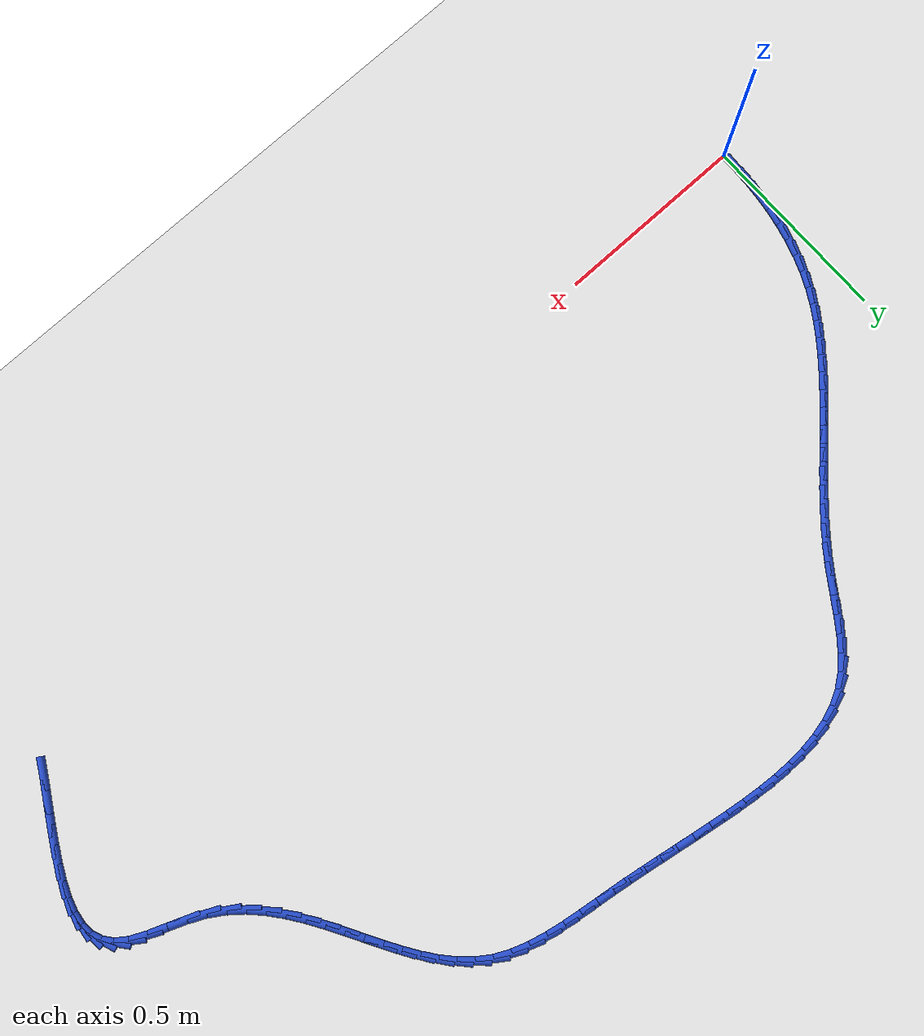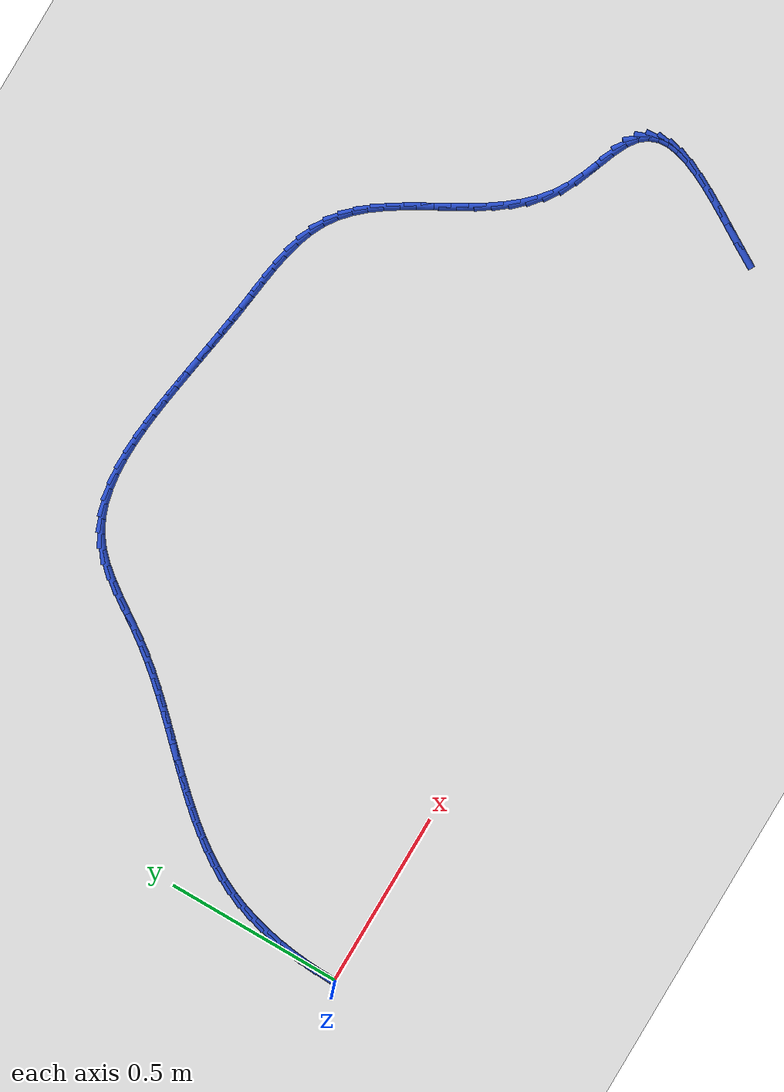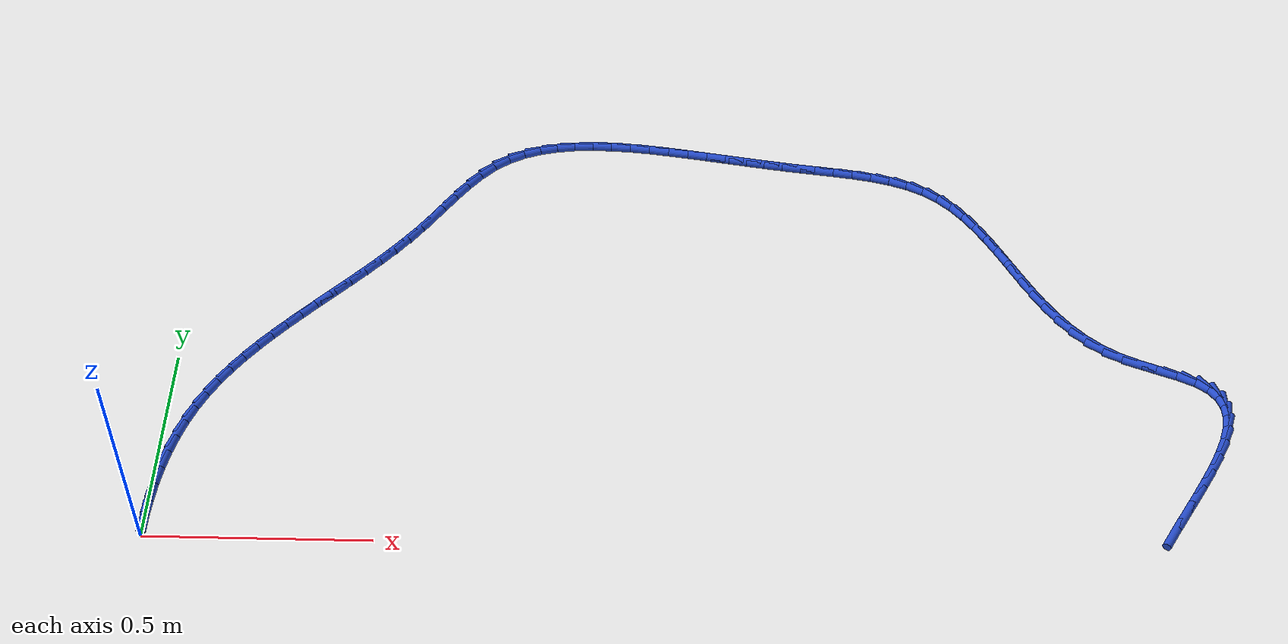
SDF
<sdf version="1.6">
 <world name="default">
  <model name="ground_plane">
   <static>1</static>
   <link name="link">
    <collision name="collision">
     <geometry><plane><normal>0 0 1</normal><size>100 100</size></plane></geometry>
     <surface><friction><ode><mu>100</mu><mu2>50</mu2></ode></friction></surface>
    </collision>
    <visual name="visual">
     <cast_shadows>0</cast_shadows>
     <geometry><plane><normal>0 0 1</normal><size>100 100</size></plane></geometry>
     <material>
      <script><uri>file://media/materials/scripts/gazebo.material</uri><name>Gazebo/WhiteGlow</name></script>
     </material>
    </visual>
   </link>
  </model>
  <model name="line">
   <link name="link_1">
    <pose>0.0004927395699502331 0.04562543467197222 0.01 0 1.57 1.518257264437585</pose>
    <collision name="collision">
     <geometry><cylinder><radius>0.01</radius><length>0.08</length></cylinder></geometry>
    </collision>
    <visual name="visual">
     <material>
      <script><name>Gazebo/Blue</name><uri>file://media/materials/scripts/gazebo.material</uri></script>
     </material>
     <geometry><cylinder><radius>0.01</radius><length>0.08</length></cylinder></geometry>
    </visual>
   </link>
   <link name="link_2">
    <pose>0.0028899708029637514 0.09121104249732984 0.01 0 1.57 1.4738781874758704</pose>
    <collision name="collision">
     <geometry><cylinder><radius>0.01</radius><length>0.08</length></cylinder></geometry>
    </collision>
    <visual name="visual">
     <material>
      <script><name>Gazebo/Blue</name><uri>file://media/materials/scripts/gazebo.material</uri></script>
     </material>
     <geometry><cylinder><radius>0.01</radius><length>0.08</length></cylinder></geometry>
    </visual>
   </link>
   <link name="link_3">
    <pose>0.00729627914929314 0.13653283049259837 0.01 0 1.57 1.4263838987702546</pose>
    <collision name="collision">
     <geometry><cylinder><radius>0.01</radius><length>0.08</length></cylinder></geometry>
    </collision>
    <visual name="visual">
     <material>
      <script><name>Gazebo/Blue</name><uri>file://media/materials/scripts/gazebo.material</uri></script>
     </material>
     <geometry><cylinder><radius>0.01</radius><length>0.08</length></cylinder></geometry>
    </visual>
   </link>
   <link name="link_4">
    <pose>0.013816250059190946 0.18136680567430352 0.01 0 1.57 1.3752803222719931</pose>
    <collision name="collision">
     <geometry><cylinder><radius>0.01</radius><length>0.08</length></cylinder></geometry>
    </collision>
    <visual name="visual">
     <material>
      <script><name>Gazebo/Blue</name><uri>file://media/materials/scripts/gazebo.material</uri></script>
     </material>
     <geometry><cylinder><radius>0.01</radius><length>0.08</length></cylinder></geometry>
    </visual>
   </link>
   <link name="link_5">
    <pose>0.02255446898290972 0.22548897505897092 0.01 0 1.57 1.320062551266252</pose>
    <collision name="collision">
     <geometry><cylinder><radius>0.01</radius><length>0.08</length></cylinder></geometry>
    </collision>
    <visual name="visual">
     <material>
      <script><name>Gazebo/Blue</name><uri>file://media/materials/scripts/gazebo.material</uri></script>
     </material>
     <geometry><cylinder><radius>0.01</radius><length>0.08</length></cylinder></geometry>
    </visual>
   </link>
   <link name="link_6">
    <pose>0.03361552137070199 0.26867534566312606 0.01 0 1.57 1.2602309832166376</pose>
    <collision name="collision">
     <geometry><cylinder><radius>0.01</radius><length>0.08</length></cylinder></geometry>
    </collision>
    <visual name="visual">
     <material>
      <script><name>Gazebo/Blue</name><uri>file://media/materials/scripts/gazebo.material</uri></script>
     </material>
     <geometry><cylinder><radius>0.01</radius><length>0.08</length></cylinder></geometry>
    </visual>
   </link>
   <link name="link_7">
    <pose>0.04710399267282034 0.31070192450329465 0.01 0 1.57 1.1953193869684806</pose>
    <collision name="collision">
     <geometry><cylinder><radius>0.01</radius><length>0.08</length></cylinder></geometry>
    </collision>
    <visual name="visual">
     <material>
      <script><name>Gazebo/Blue</name><uri>file://media/materials/scripts/gazebo.material</uri></script>
     </material>
     <geometry><cylinder><radius>0.01</radius><length>0.08</length></cylinder></geometry>
    </visual>
   </link>
   <link name="link_8">
    <pose>0.06312446833951726 0.35134471859600236 0.01 0 1.57 1.1257652403895446</pose>
    <collision name="collision">
     <geometry><cylinder><radius>0.01</radius><length>0.08</length></cylinder></geometry>
    </collision>
    <visual name="visual">
     <material>
      <script><name>Gazebo/Blue</name><uri>file://media/materials/scripts/gazebo.material</uri></script>
     </material>
     <geometry><cylinder><radius>0.01</radius><length>0.08</length></cylinder></geometry>
    </visual>
   </link>
   <link name="link_9">
    <pose>0.0817559265369225 0.3904091851299864 0.01 0 1.57 1.058842065183489</pose>
    <collision name="collision">
     <geometry><cylinder><radius>0.01</radius><length>0.08</length></cylinder></geometry>
    </collision>
    <visual name="visual">
     <material>
      <script><name>Gazebo/Blue</name><uri>file://media/materials/scripts/gazebo.material</uri></script>
     </material>
     <geometry><cylinder><radius>0.01</radius><length>0.08</length></cylinder></geometry>
    </visual>
   </link>
   <link name="link_10">
    <pose>0.10285486777474098 0.42795664619803014 0.01 0 1.57 0.9990269123278682</pose>
    <collision name="collision">
     <geometry><cylinder><radius>0.01</radius><length>0.08</length></cylinder></geometry>
    </collision>
    <visual name="visual">
     <material>
      <script><name>Gazebo/Blue</name><uri>file://media/materials/scripts/gazebo.material</uri></script>
     </material>
     <geometry><cylinder><radius>0.01</radius><length>0.08</length></cylinder></geometry>
    </visual>
   </link>
   <link name="link_11">
    <pose>0.12616340980485868 0.46417997208442524 0.01 0 1.57 0.9469185855319321</pose>
    <collision name="collision">
     <geometry><cylinder><radius>0.01</radius><length>0.08</length></cylinder></geometry>
    </collision>
    <visual name="visual">
     <material>
      <script><name>Gazebo/Blue</name><uri>file://media/materials/scripts/gazebo.material</uri></script>
     </material>
     <geometry><cylinder><radius>0.01</radius><length>0.08</length></cylinder></geometry>
    </visual>
   </link>
   <link name="link_12">
    <pose>0.15142273011574314 0.4992731144423229 0.01 0 1.57 0.9027721931222819</pose>
    <collision name="collision">
     <geometry><cylinder><radius>0.01</radius><length>0.08</length></cylinder></geometry>
    </collision>
    <visual name="visual">
     <material>
      <script><name>Gazebo/Blue</name><uri>file://media/materials/scripts/gazebo.material</uri></script>
     </material>
     <geometry><cylinder><radius>0.01</radius><length>0.08</length></cylinder></geometry>
    </visual>
   </link>
   <link name="link_13">
    <pose>0.17837400619586158 0.5334300249248736 0.01 0 1.57 0.8666155394232734</pose>
    <collision name="collision">
     <geometry><cylinder><radius>0.01</radius><length>0.08</length></cylinder></geometry>
    </collision>
    <visual name="visual">
     <material>
      <script><name>Gazebo/Blue</name><uri>file://media/materials/scripts/gazebo.material</uri></script>
     </material>
     <geometry><cylinder><radius>0.01</radius><length>0.08</length></cylinder></geometry>
    </visual>
   </link>
   <link name="link_14">
    <pose>0.20675841553368132 0.5668446551852275 0.01 0 1.57 0.8383335326738679</pose>
    <collision name="collision">
     <geometry><cylinder><radius>0.01</radius><length>0.08</length></cylinder></geometry>
    </collision>
    <visual name="visual">
     <material>
      <script><name>Gazebo/Blue</name><uri>file://media/materials/scripts/gazebo.material</uri></script>
     </material>
     <geometry><cylinder><radius>0.01</radius><length>0.08</length></cylinder></geometry>
    </visual>
   </link>
   <link name="link_15">
    <pose>0.23631713561766995 0.5997109568765362 0.01 0 1.57 0.8177387101790301</pose>
    <collision name="collision">
     <geometry><cylinder><radius>0.01</radius><length>0.08</length></cylinder></geometry>
    </collision>
    <visual name="visual">
     <material>
      <script><name>Gazebo/Blue</name><uri>file://media/materials/scripts/gazebo.material</uri></script>
     </material>
     <geometry><cylinder><radius>0.01</radius><length>0.08</length></cylinder></geometry>
    </visual>
   </link>
   <link name="link_16">
    <pose>0.26679134393629467 0.6322228816519498 0.01 0 1.57 0.8046235800142252</pose>
    <collision name="collision">
     <geometry><cylinder><radius>0.01</radius><length>0.08</length></cylinder></geometry>
    </collision>
    <visual name="visual">
     <material>
      <script><name>Gazebo/Blue</name><uri>file://media/materials/scripts/gazebo.material</uri></script>
     </material>
     <geometry><cylinder><radius>0.01</radius><length>0.08</length></cylinder></geometry>
    </visual>
   </link>
   <link name="link_17">
    <pose>0.29792221797802304 0.6645743811646193 0.01 0 1.57 0.7987952416516418</pose>
    <collision name="collision">
     <geometry><cylinder><radius>0.01</radius><length>0.08</length></cylinder></geometry>
    </collision>
    <visual name="visual">
     <material>
      <script><name>Gazebo/Blue</name><uri>file://media/materials/scripts/gazebo.material</uri></script>
     </material>
     <geometry><cylinder><radius>0.01</radius><length>0.08</length></cylinder></geometry>
    </visual>
   </link>
   <link name="link_18">
    <pose>0.3294509352313222 0.6969594070676949 0.01 0 1.57 0.8000947162542933</pose>
    <collision name="collision">
     <geometry><cylinder><radius>0.01</radius><length>0.08</length></cylinder></geometry>
    </collision>
    <visual name="visual">
     <material>
      <script><name>Gazebo/Blue</name><uri>file://media/materials/scripts/gazebo.material</uri></script>
     </material>
     <geometry><cylinder><radius>0.01</radius><length>0.08</length></cylinder></geometry>
    </visual>
   </link>
   <link name="link_19">
    <pose>0.3611186731846596 0.7295719110143276 0.01 0 1.57 0.8084036189838907</pose>
    <collision name="collision">
     <geometry><cylinder><radius>0.01</radius><length>0.08</length></cylinder></geometry>
    </collision>
    <visual name="visual">
     <material>
      <script><name>Gazebo/Blue</name><uri>file://media/materials/scripts/gazebo.material</uri></script>
     </material>
     <geometry><cylinder><radius>0.01</radius><length>0.08</length></cylinder></geometry>
    </visual>
   </link>
   <link name="link_20">
    <pose>0.39266660932650294 0.7626058446576682 0.01 0 1.57 0.8236401660063645</pose>
    <collision name="collision">
     <geometry><cylinder><radius>0.01</radius><length>0.08</length></cylinder></geometry>
    </collision>
    <visual name="visual">
     <material>
      <script><name>Gazebo/Blue</name><uri>file://media/materials/scripts/gazebo.material</uri></script>
     </material>
     <geometry><cylinder><radius>0.01</radius><length>0.08</length></cylinder></geometry>
    </visual>
   </link>
   <link name="link_21">
    <pose>0.42383592114531915 0.7962551596508674 0.01 0 1.57 0.8457456632771132</pose>
    <collision name="collision">
     <geometry><cylinder><radius>0.01</radius><length>0.08</length></cylinder></geometry>
    </collision>
    <visual name="visual">
     <material>
      <script><name>Gazebo/Blue</name><uri>file://media/materials/scripts/gazebo.material</uri></script>
     </material>
     <geometry><cylinder><radius>0.01</radius><length>0.08</length></cylinder></geometry>
    </visual>
   </link>
   <link name="link_22">
    <pose>0.4543677861295757 0.8307138076470753 0.01 0 1.57 0.8746619823495427</pose>
    <collision name="collision">
     <geometry><cylinder><radius>0.01</radius><length>0.08</length></cylinder></geometry>
    </collision>
    <visual name="visual">
     <material>
      <script><name>Gazebo/Blue</name><uri>file://media/materials/scripts/gazebo.material</uri></script>
     </material>
     <geometry><cylinder><radius>0.01</radius><length>0.08</length></cylinder></geometry>
    </visual>
   </link>
   <link name="link_23">
    <pose>0.48400338176774016 0.8661757402994432 0.01 0 1.57 0.9103003917268055</pose>
    <collision name="collision">
     <geometry><cylinder><radius>0.01</radius><length>0.08</length></cylinder></geometry>
    </collision>
    <visual name="visual">
     <material>
      <script><name>Gazebo/Blue</name><uri>file://media/materials/scripts/gazebo.material</uri></script>
     </material>
     <geometry><cylinder><radius>0.01</radius><length>0.08</length></cylinder></geometry>
    </visual>
   </link>
   <link name="link_24">
    <pose>0.5124838855482798 0.9028349092611215 0.01 0 1.57 0.9509943058661481</pose>
    <collision name="collision">
     <geometry><cylinder><radius>0.01</radius><length>0.08</length></cylinder></geometry>
    </collision>
    <visual name="visual">
     <material>
      <script><name>Gazebo/Blue</name><uri>file://media/materials/scripts/gazebo.material</uri></script>
     </material>
     <geometry><cylinder><radius>0.01</radius><length>0.08</length></cylinder></geometry>
    </visual>
   </link>
   <link name="link_25">
    <pose>0.5395960091554868 0.9408278147379704 0.01 0 1.57 0.9770967797968013</pose>
    <collision name="collision">
     <geometry><cylinder><radius>0.01</radius><length>0.08</length></cylinder></geometry>
    </collision>
    <visual name="visual">
     <material>
      <script><name>Gazebo/Blue</name><uri>file://media/materials/scripts/gazebo.material</uri></script>
     </material>
     <geometry><cylinder><radius>0.01</radius><length>0.08</length></cylinder></geometry>
    </visual>
   </link>
   <link name="link_26">
    <pose>0.5657228701153659 0.9795384592106015 0.01 0 1.57 0.9752075556604449</pose>
    <collision name="collision">
     <geometry><cylinder><radius>0.01</radius><length>0.08</length></cylinder></geometry>
    </collision>
    <visual name="visual">
     <material>
      <script><name>Gazebo/Blue</name><uri>file://media/materials/scripts/gazebo.material</uri></script>
     </material>
     <geometry><cylinder><radius>0.01</radius><length>0.08</length></cylinder></geometry>
    </visual>
   </link>
   <link name="link_27">
    <pose>0.59166680873417 1.01782190300909 0.01 0 1.57 0.9441252896394173</pose>
    <collision name="collision">
     <geometry><cylinder><radius>0.01</radius><length>0.08</length></cylinder></geometry>
    </collision>
    <visual name="visual">
     <material>
      <script><name>Gazebo/Blue</name><uri>file://media/materials/scripts/gazebo.material</uri></script>
     </material>
     <geometry><cylinder><radius>0.01</radius><length>0.08</length></cylinder></geometry>
    </visual>
   </link>
   <link name="link_28">
    <pose>0.6182388766436759 1.0545222152018854 0.01 0 1.57 0.881115119819073</pose>
    <collision name="collision">
     <geometry><cylinder><radius>0.01</radius><length>0.08</length></cylinder></geometry>
    </collision>
    <visual name="visual">
     <material>
      <script><name>Gazebo/Blue</name><uri>file://media/materials/scripts/gazebo.material</uri></script>
     </material>
     <geometry><cylinder><radius>0.01</radius><length>0.08</length></cylinder></geometry>
    </visual>
   </link>
   <link name="link_29">
    <pose>0.6462501254756609 1.0884834648574377 0.01 0 1.57 0.7821620977689119</pose>
    <collision name="collision">
     <geometry><cylinder><radius>0.01</radius><length>0.08</length></cylinder></geometry>
    </collision>
    <visual name="visual">
     <material>
      <script><name>Gazebo/Blue</name><uri>file://media/materials/scripts/gazebo.material</uri></script>
     </material>
     <geometry><cylinder><radius>0.01</radius><length>0.08</length></cylinder></geometry>
    </visual>
   </link>
   <link name="link_30">
    <pose>0.6765116068619019 1.118549721044197 0.01 0 1.57 0.6440983878873386</pose>
    <collision name="collision">
     <geometry><cylinder><radius>0.01</radius><length>0.08</length></cylinder></geometry>
    </collision>
    <visual name="visual">
     <material>
      <script><name>Gazebo/Blue</name><uri>file://media/materials/scripts/gazebo.material</uri></script>
     </material>
     <geometry><cylinder><radius>0.01</radius><length>0.08</length></cylinder></geometry>
    </visual>
   </link>
   <link name="link_31">
    <pose>0.7098305875019284 1.1435700653549248 0.01 0 1.57 0.4850008331735818</pose>
    <collision name="collision">
     <geometry><cylinder><radius>0.01</radius><length>0.08</length></cylinder></geometry>
    </collision>
    <visual name="visual">
     <material>
      <script><name>Gazebo/Blue</name><uri>file://media/materials/scripts/gazebo.material</uri></script>
     </material>
     <geometry><cylinder><radius>0.01</radius><length>0.08</length></cylinder></geometry>
    </visual>
   </link>
   <link name="link_32">
    <pose>0.7465974881838625 1.1629456236803184 0.01 0 1.57 0.3420349609793625</pose>
    <collision name="collision">
     <geometry><cylinder><radius>0.01</radius><length>0.08</length></cylinder></geometry>
    </collision>
    <visual name="visual">
     <material>
      <script><name>Gazebo/Blue</name><uri>file://media/materials/scripts/gazebo.material</uri></script>
     </material>
     <geometry><cylinder><radius>0.01</radius><length>0.08</length></cylinder></geometry>
    </visual>
   </link>
   <link name="link_33">
    <pose>0.7864143831079319 1.1771215581526049 0.01 0 1.57 0.2213549687286205</pose>
    <collision name="collision">
     <geometry><cylinder><radius>0.01</radius><length>0.08</length></cylinder></geometry>
    </collision>
    <visual name="visual">
     <material>
      <script><name>Gazebo/Blue</name><uri>file://media/materials/scripts/gazebo.material</uri></script>
     </material>
     <geometry><cylinder><radius>0.01</radius><length>0.08</length></cylinder></geometry>
    </visual>
   </link>
   <link name="link_34">
    <pose>0.8287956647312638 1.186659151045742 0.01 0 1.57 0.12220682848351921</pose>
    <collision name="collision">
     <geometry><cylinder><radius>0.01</radius><length>0.08</length></cylinder></geometry>
    </collision>
    <visual name="visual">
     <material>
      <script><name>Gazebo/Blue</name><uri>file://media/materials/scripts/gazebo.material</uri></script>
     </material>
     <geometry><cylinder><radius>0.01</radius><length>0.08</length></cylinder></geometry>
    </visual>
   </link>
   <link name="link_35">
    <pose>0.8732557255109842 1.1921196846336868 0.01 0 1.57 0.04220337423758612</pose>
    <collision name="collision">
     <geometry><cylinder><radius>0.01</radius><length>0.08</length></cylinder></geometry>
    </collision>
    <visual name="visual">
     <material>
      <script><name>Gazebo/Blue</name><uri>file://media/materials/scripts/gazebo.material</uri></script>
     </material>
     <geometry><cylinder><radius>0.01</radius><length>0.08</length></cylinder></geometry>
    </visual>
   </link>
   <link name="link_36">
    <pose>0.9193089579042201 1.194064441190396 0.01 0 1.57 -0.02140727101514247</pose>
    <collision name="collision">
     <geometry><cylinder><radius>0.01</radius><length>0.08</length></cylinder></geometry>
    </collision>
    <visual name="visual">
     <material>
      <script><name>Gazebo/Blue</name><uri>file://media/materials/scripts/gazebo.material</uri></script>
     </material>
     <geometry><cylinder><radius>0.01</radius><length>0.08</length></cylinder></geometry>
    </visual>
   </link>
   <link name="link_37">
    <pose>0.9664697543680985 1.193054702989828 0.01 0 1.57 -0.0710970966772412</pose>
    <collision name="collision">
     <geometry><cylinder><radius>0.01</radius><length>0.08</length></cylinder></geometry>
    </collision>
    <visual name="visual">
     <material>
      <script><name>Gazebo/Blue</name><uri>file://media/materials/scripts/gazebo.material</uri></script>
     </material>
     <geometry><cylinder><radius>0.01</radius><length>0.08</length></cylinder></geometry>
    </visual>
   </link>
   <link name="link_38">
    <pose>1.0142525073597453 1.1896517523059391 0.01 0 1.57 -0.10881263816509414</pose>
    <collision name="collision">
     <geometry><cylinder><radius>0.01</radius><length>0.08</length></cylinder></geometry>
    </collision>
    <visual name="visual">
     <material>
      <script><name>Gazebo/Blue</name><uri>file://media/materials/scripts/gazebo.material</uri></script>
     </material>
     <geometry><cylinder><radius>0.01</radius><length>0.08</length></cylinder></geometry>
    </visual>
   </link>
   <link name="link_39">
    <pose>1.0621716093362874 1.184416871412687 0.01 0 1.57 -0.13591428378970402</pose>
    <collision name="collision">
     <geometry><cylinder><radius>0.01</radius><length>0.08</length></cylinder></geometry>
    </collision>
    <visual name="visual">
     <material>
      <script><name>Gazebo/Blue</name><uri>file://media/materials/scripts/gazebo.material</uri></script>
     </material>
     <geometry><cylinder><radius>0.01</radius><length>0.08</length></cylinder></geometry>
    </visual>
   </link>
   <link name="link_40">
    <pose>1.1097414527548515 1.177911342584029 0.01 0 1.57 -0.15316971710238506</pose>
    <collision name="collision">
     <geometry><cylinder><radius>0.01</radius><length>0.08</length></cylinder></geometry>
    </collision>
    <visual name="visual">
     <material>
      <script><name>Gazebo/Blue</name><uri>file://media/materials/scripts/gazebo.material</uri></script>
     </material>
     <geometry><cylinder><radius>0.01</radius><length>0.08</length></cylinder></geometry>
    </visual>
   </link>
   <link name="link_41">
    <pose>1.156476430072564 1.1706964480939228 0.01 0 1.57 -0.16119935876349228</pose>
    <collision name="collision">
     <geometry><cylinder><radius>0.01</radius><length>0.08</length></cylinder></geometry>
    </collision>
    <visual name="visual">
     <material>
      <script><name>Gazebo/Blue</name><uri>file://media/materials/scripts/gazebo.material</uri></script>
     </material>
     <geometry><cylinder><radius>0.01</radius><length>0.08</length></cylinder></geometry>
    </visual>
   </link>
   <link name="link_42">
    <pose>1.2019497395227572 1.1633020198925648 0.01 0 1.57 -0.1640356536661924</pose>
    <collision name="collision">
     <geometry><cylinder><radius>0.01</radius><length>0.08</length></cylinder></geometry>
    </collision>
    <visual name="visual">
     <material>
      <script><name>Gazebo/Blue</name><uri>file://media/materials/scripts/gazebo.material</uri></script>
     </material>
     <geometry><cylinder><radius>0.01</radius><length>0.08</length></cylinder></geometry>
    </visual>
   </link>
   <link name="link_43">
    <pose>1.2462849953902118 1.1559635181160608 0.01 0 1.57 -0.16375785305083437</pose>
    <collision name="collision">
     <geometry><cylinder><radius>0.01</radius><length>0.08</length></cylinder></geometry>
    </collision>
    <visual name="visual">
     <material>
      <script><name>Gazebo/Blue</name><uri>file://media/materials/scripts/gazebo.material</uri></script>
     </material>
     <geometry><cylinder><radius>0.01</radius><length>0.08</length></cylinder></geometry>
    </visual>
   </link>
   <link name="link_44">
    <pose>1.2899064507237932 1.1487556162044548 0.01 0 1.57 -0.16024483841536052</pose>
    <collision name="collision">
     <geometry><cylinder><radius>0.01</radius><length>0.08</length></cylinder></geometry>
    </collision>
    <visual name="visual">
     <material>
      <script><name>Gazebo/Blue</name><uri>file://media/materials/scripts/gazebo.material</uri></script>
     </material>
     <geometry><cylinder><radius>0.01</radius><length>0.08</length></cylinder></geometry>
    </visual>
   </link>
   <link name="link_45">
    <pose>1.3332414062798958 1.1417513576322567 0.01 0 1.57 -0.1535253820327111</pose>
    <collision name="collision">
     <geometry><cylinder><radius>0.01</radius><length>0.08</length></cylinder></geometry>
    </collision>
    <visual name="visual">
     <material>
      <script><name>Gazebo/Blue</name><uri>file://media/materials/scripts/gazebo.material</uri></script>
     </material>
     <geometry><cylinder><radius>0.01</radius><length>0.08</length></cylinder></geometry>
    </visual>
   </link>
   <link name="link_46">
    <pose>1.376717162814913 1.1350237858739776 0.01 0 1.57 -0.14380700129850343</pose>
    <collision name="collision">
     <geometry><cylinder><radius>0.01</radius><length>0.08</length></cylinder></geometry>
    </collision>
    <visual name="visual">
     <material>
      <script><name>Gazebo/Blue</name><uri>file://media/materials/scripts/gazebo.material</uri></script>
     </material>
     <geometry><cylinder><radius>0.01</radius><length>0.08</length></cylinder></geometry>
    </visual>
   </link>
   <link name="link_47">
    <pose>1.4207610210852377 1.1286459444041266 0.01 0 1.57 -0.13222648996017403</pose>
    <collision name="collision">
     <geometry><cylinder><radius>0.01</radius><length>0.08</length></cylinder></geometry>
    </collision>
    <visual name="visual">
     <material>
      <script><name>Gazebo/Blue</name><uri>file://media/materials/scripts/gazebo.material</uri></script>
     </material>
     <geometry><cylinder><radius>0.01</radius><length>0.08</length></cylinder></geometry>
    </visual>
   </link>
   <link name="link_48">
    <pose>1.4657611575061533 1.1226608125541793 0.01 0 1.57 -0.13117452939009133</pose>
    <collision name="collision">
     <geometry><cylinder><radius>0.01</radius><length>0.08</length></cylinder></geometry>
    </collision>
    <visual name="visual">
     <material>
      <script><name>Gazebo/Blue</name><uri>file://media/materials/scripts/gazebo.material</uri></script>
     </material>
     <geometry><cylinder><radius>0.01</radius><length>0.08</length></cylinder></geometry>
    </visual>
   </link>
   <link name="link_49">
    <pose>1.5114783349005732 1.116629249025633 0.01 0 1.57 -0.15000429552780856</pose>
    <collision name="collision">
     <geometry><cylinder><radius>0.01</radius><length>0.08</length></cylinder></geometry>
    </collision>
    <visual name="visual">
     <material>
      <script><name>Gazebo/Blue</name><uri>file://media/materials/scripts/gazebo.material</uri></script>
     </material>
     <geometry><cylinder><radius>0.01</radius><length>0.08</length></cylinder></geometry>
    </visual>
   </link>
   <link name="link_50">
    <pose>1.5571679087123893 1.1097237445806671 0.01 0 1.57 -0.18961904936485577</pose>
    <collision name="collision">
     <geometry><cylinder><radius>0.01</radius><length>0.08</length></cylinder></geometry>
    </collision>
    <visual name="visual">
     <material>
      <script><name>Gazebo/Blue</name><uri>file://media/materials/scripts/gazebo.material</uri></script>
     </material>
     <geometry><cylinder><radius>0.01</radius><length>0.08</length></cylinder></geometry>
    </visual>
   </link>
   <link name="link_51">
    <pose>1.602070869524743 1.1011057516555496 0.01 0 1.57 -0.25212257753629713</pose>
    <collision name="collision">
     <geometry><cylinder><radius>0.01</radius><length>0.08</length></cylinder></geometry>
    </collision>
    <visual name="visual">
     <material>
      <script><name>Gazebo/Blue</name><uri>file://media/materials/scripts/gazebo.material</uri></script>
     </material>
     <geometry><cylinder><radius>0.01</radius><length>0.08</length></cylinder></geometry>
    </visual>
   </link>
   <link name="link_52">
    <pose>1.6454282079207743 1.0899367226865457 0.01 0 1.57 -0.34079554602121986</pose>
    <collision name="collision">
     <geometry><cylinder><radius>0.01</radius><length>0.08</length></cylinder></geometry>
    </collision>
    <visual name="visual">
     <material>
      <script><name>Gazebo/Blue</name><uri>file://media/materials/scripts/gazebo.material</uri></script>
     </material>
     <geometry><cylinder><radius>0.01</radius><length>0.08</length></cylinder></geometry>
    </visual>
   </link>
   <link name="link_53">
    <pose>1.6864809144836244 1.0753781101099233 0.01 0 1.57 -0.45926227998942915</pose>
    <collision name="collision">
     <geometry><cylinder><radius>0.01</radius><length>0.08</length></cylinder></geometry>
    </collision>
    <visual name="visual">
     <material>
      <script><name>Gazebo/Blue</name><uri>file://media/materials/scripts/gazebo.material</uri></script>
     </material>
     <geometry><cylinder><radius>0.01</radius><length>0.08</length></cylinder></geometry>
    </visual>
   </link>
   <link name="link_54">
    <pose>1.7244699797964345 1.0565913663619488 0.01 0 1.57 -0.6023628784856525</pose>
    <collision name="collision">
     <geometry><cylinder><radius>0.01</radius><length>0.08</length></cylinder></geometry>
    </collision>
    <visual name="visual">
     <material>
      <script><name>Gazebo/Blue</name><uri>file://media/materials/scripts/gazebo.material</uri></script>
     </material>
     <geometry><cylinder><radius>0.01</radius><length>0.08</length></cylinder></geometry>
    </visual>
   </link>
   <link name="link_55">
    <pose>1.758833281919285 1.032962773614327 0.01 0 1.57 -0.7350517453892694</pose>
    <collision name="collision">
     <geometry><cylinder><radius>0.01</radius><length>0.08</length></cylinder></geometry>
    </collision>
    <visual name="visual">
     <material>
      <script><name>Gazebo/Blue</name><uri>file://media/materials/scripts/gazebo.material</uri></script>
     </material>
     <geometry><cylinder><radius>0.01</radius><length>0.08</length></cylinder></geometry>
    </visual>
   </link>
   <link name="link_56">
    <pose>1.7898903697625963 1.0048854115614254 0.01 0 1.57 -0.8440696737563672</pose>
    <collision name="collision">
     <geometry><cylinder><radius>0.01</radius><length>0.08</length></cylinder></geometry>
    </collision>
    <visual name="visual">
     <material>
      <script><name>Gazebo/Blue</name><uri>file://media/materials/scripts/gazebo.material</uri></script>
     </material>
     <geometry><cylinder><radius>0.01</radius><length>0.08</length></cylinder></geometry>
    </visual>
   </link>
   <link name="link_57">
    <pose>1.818207485998988 0.9730340644232179 0.01 0 1.57 -0.9285691239250818</pose>
    <collision name="collision">
     <geometry><cylinder><radius>0.01</radius><length>0.08</length></cylinder></geometry>
    </collision>
    <visual name="visual">
     <material>
      <script><name>Gazebo/Blue</name><uri>file://media/materials/scripts/gazebo.material</uri></script>
     </material>
     <geometry><cylinder><radius>0.01</radius><length>0.08</length></cylinder></geometry>
    </visual>
   </link>
   <link name="link_58">
    <pose>1.8443508850422297 0.9380835298271322 0.01 0 1.57 -0.9898783678970184</pose>
    <collision name="collision">
     <geometry><cylinder><radius>0.01</radius><length>0.08</length></cylinder></geometry>
    </collision>
    <visual name="visual">
     <material>
      <script><name>Gazebo/Blue</name><uri>file://media/materials/scripts/gazebo.material</uri></script>
     </material>
     <geometry><cylinder><radius>0.01</radius><length>0.08</length></cylinder></geometry>
    </visual>
   </link>
   <link name="link_59">
    <pose>1.8688868213060892 0.9007086054005956 0.01 0 1.57 -1.0300007008097212</pose>
    <collision name="collision">
     <geometry><cylinder><radius>0.01</radius><length>0.08</length></cylinder></geometry>
    </collision>
    <visual name="visual">
     <material>
      <script><name>Gazebo/Blue</name><uri>file://media/materials/scripts/gazebo.material</uri></script>
     </material>
     <geometry><cylinder><radius>0.01</radius><length>0.08</length></cylinder></geometry>
    </visual>
   </link>
   <link name="link_60">
    <pose>1.8923815492043363 0.8615840887710358 0.01 0 1.57 -1.0507367019457632</pose>
    <collision name="collision">
     <geometry><cylinder><radius>0.01</radius><length>0.08</length></cylinder></geometry>
    </collision>
    <visual name="visual">
     <material>
      <script><name>Gazebo/Blue</name><uri>file://media/materials/scripts/gazebo.material</uri></script>
     </material>
     <geometry><cylinder><radius>0.01</radius><length>0.08</length></cylinder></geometry>
    </visual>
   </link>
   <link name="link_61">
    <pose>1.9154013231507405 0.8213847775658801 0.01 0 1.57 -1.053295582378892</pose>
    <collision name="collision">
     <geometry><cylinder><radius>0.01</radius><length>0.08</length></cylinder></geometry>
    </collision>
    <visual name="visual">
     <material>
      <script><name>Gazebo/Blue</name><uri>file://media/materials/scripts/gazebo.material</uri></script>
     </material>
     <geometry><cylinder><radius>0.01</radius><length>0.08</length></cylinder></geometry>
    </visual>
   </link>
   <link name="link_62">
    <pose>1.9385123975590697 0.7807854694125557 0.01 0 1.57 -1.0381822895705313</pose>
    <collision name="collision">
     <geometry><cylinder><radius>0.01</radius><length>0.08</length></cylinder></geometry>
    </collision>
    <visual name="visual">
     <material>
      <script><name>Gazebo/Blue</name><uri>file://media/materials/scripts/gazebo.material</uri></script>
     </material>
     <geometry><cylinder><radius>0.01</radius><length>0.08</length></cylinder></geometry>
    </visual>
   </link>
   <link name="link_63">
    <pose>1.9622810268430935 0.7404609619384901 0.01 0 1.57 -1.0052306896123775</pose>
    <collision name="collision">
     <geometry><cylinder><radius>0.01</radius><length>0.08</length></cylinder></geometry>
    </collision>
    <visual name="visual">
     <material>
      <script><name>Gazebo/Blue</name><uri>file://media/materials/scripts/gazebo.material</uri></script>
     </material>
     <geometry><cylinder><radius>0.01</radius><length>0.08</length></cylinder></geometry>
    </visual>
   </link>
   <link name="link_64">
    <pose>1.987273465416581 0.7010860527711116 0.01 0 1.57 -0.9537491371853772</pose>
    <collision name="collision">
     <geometry><cylinder><radius>0.01</radius><length>0.08</length></cylinder></geometry>
    </collision>
    <visual name="visual">
     <material>
      <script><name>Gazebo/Blue</name><uri>file://media/materials/scripts/gazebo.material</uri></script>
     </material>
     <geometry><cylinder><radius>0.01</radius><length>0.08</length></cylinder></geometry>
    </visual>
   </link>
   <link name="link_65">
    <pose>2.0140559676933005 0.6633355395378467 0.01 0 1.57 -0.8828203982317435</pose>
    <collision name="collision">
     <geometry><cylinder><radius>0.01</radius><length>0.08</length></cylinder></geometry>
    </collision>
    <visual name="visual">
     <material>
      <script><name>Gazebo/Blue</name><uri>file://media/materials/scripts/gazebo.material</uri></script>
     </material>
     <geometry><cylinder><radius>0.01</radius><length>0.08</length></cylinder></geometry>
    </visual>
   </link>
   <link name="link_66">
    <pose>2.043194788087023 0.627884219866123 0.01 0 1.57 -0.7918428184935988</pose>
    <collision name="collision">
     <geometry><cylinder><radius>0.01</radius><length>0.08</length></cylinder></geometry>
    </collision>
    <visual name="visual">
     <material>
      <script><name>Gazebo/Blue</name><uri>file://media/materials/scripts/gazebo.material</uri></script>
     </material>
     <geometry><cylinder><radius>0.01</radius><length>0.08</length></cylinder></geometry>
    </visual>
   </link>
   <link name="link_67">
    <pose>2.0752561810115147 0.5954068913833682 0.01 0 1.57 -0.6813667376273711</pose>
    <collision name="collision">
     <geometry><cylinder><radius>0.01</radius><length>0.08</length></cylinder></geometry>
    </collision>
    <visual name="visual">
     <material>
      <script><name>Gazebo/Blue</name><uri>file://media/materials/scripts/gazebo.material</uri></script>
     </material>
     <geometry><cylinder><radius>0.01</radius><length>0.08</length></cylinder></geometry>
    </visual>
   </link>
   <link name="link_68">
    <pose>2.1108064008805467 0.5665783517170095 0.01 0 1.57 -0.5540917921333697</pose>
    <collision name="collision">
     <geometry><cylinder><radius>0.01</radius><length>0.08</length></cylinder></geometry>
    </collision>
    <visual name="visual">
     <material>
      <script><name>Gazebo/Blue</name><uri>file://media/materials/scripts/gazebo.material</uri></script>
     </material>
     <geometry><cylinder><radius>0.01</radius><length>0.08</length></cylinder></geometry>
    </visual>
   </link>
   <link name="link_69">
    <pose>2.1504110831496677 0.5420729825750886 0.01 0 1.57 -0.4334395602310649</pose>
    <collision name="collision">
     <geometry><cylinder><radius>0.01</radius><length>0.08</length></cylinder></geometry>
    </collision>
    <visual name="visual">
     <material>
      <script><name>Gazebo/Blue</name><uri>file://media/materials/scripts/gazebo.material</uri></script>
     </material>
     <geometry><cylinder><radius>0.01</radius><length>0.08</length></cylinder></geometry>
    </visual>
   </link>
   <link name="link_70">
    <pose>2.1937907513898356 0.5219972785209317 0.01 0 1.57 -0.3705456879622866</pose>
    <collision name="collision">
     <geometry><cylinder><radius>0.01</radius><length>0.08</length></cylinder></geometry>
    </collision>
    <visual name="visual">
     <material>
      <script><name>Gazebo/Blue</name><uri>file://media/materials/scripts/gazebo.material</uri></script>
     </material>
     <geometry><cylinder><radius>0.01</radius><length>0.08</length></cylinder></geometry>
    </visual>
   </link>
   <link name="link_71">
    <pose>2.2381471645835336 0.5047652078897514 0.01 0 1.57 -0.36941815360986097</pose>
    <collision name="collision">
     <geometry><cylinder><radius>0.01</radius><length>0.08</length></cylinder></geometry>
    </collision>
    <visual name="visual">
     <material>
      <script><name>Gazebo/Blue</name><uri>file://media/materials/scripts/gazebo.material</uri></script>
     </material>
     <geometry><cylinder><radius>0.01</radius><length>0.08</length></cylinder></geometry>
    </visual>
   </link>
   <link name="link_72">
    <pose>2.2802149259553444 0.48847682584818786 0.01 0 1.57 -0.44122542386601443</pose>
    <collision name="collision">
     <geometry><cylinder><radius>0.01</radius><length>0.08</length></cylinder></geometry>
    </collision>
    <visual name="visual">
     <material>
      <script><name>Gazebo/Blue</name><uri>file://media/materials/scripts/gazebo.material</uri></script>
     </material>
     <geometry><cylinder><radius>0.01</radius><length>0.08</length></cylinder></geometry>
    </visual>
   </link>
   <link name="link_73">
    <pose>2.316728638729851 0.47123218756288027 0.01 0 1.57 -0.6219371588305702</pose>
    <collision name="collision">
     <geometry><cylinder><radius>0.01</radius><length>0.08</length></cylinder></geometry>
    </collision>
    <visual name="visual">
     <material>
      <script><name>Gazebo/Blue</name><uri>file://media/materials/scripts/gazebo.material</uri></script>
     </material>
     <geometry><cylinder><radius>0.01</radius><length>0.08</length></cylinder></geometry>
    </visual>
   </link>
   <link name="link_74">
    <pose>2.3446263635961078 0.4512340515643876 0.01 0 1.57 -0.8987083118697661</pose>
    <collision name="collision">
     <geometry><cylinder><radius>0.01</radius><length>0.08</length></cylinder></geometry>
    </collision>
    <visual name="visual">
     <material>
      <script><name>Gazebo/Blue</name><uri>file://media/materials/scripts/gazebo.material</uri></script>
     </material>
     <geometry><cylinder><radius>0.01</radius><length>0.08</length></cylinder></geometry>
    </visual>
   </link>
   <link name="link_75">
    <pose>2.363209620887246 0.4278782279951374 0.01 0 1.57 -1.20745494179985</pose>
    <collision name="collision">
     <geometry><cylinder><radius>0.01</radius><length>0.08</length></cylinder></geometry>
    </collision>
    <visual name="visual">
     <material>
      <script><name>Gazebo/Blue</name><uri>file://media/materials/scripts/gazebo.material</uri></script>
     </material>
     <geometry><cylinder><radius>0.01</radius><length>0.08</length></cylinder></geometry>
    </visual>
   </link>
   <link name="link_76">
    <pose>2.373303920937229 0.40132982243762116 0.01 0 1.57 -1.4879028084055372</pose>
    <collision name="collision">
     <geometry><cylinder><radius>0.01</radius><length>0.08</length></cylinder></geometry>
    </collision>
    <visual name="visual">
     <material>
      <script><name>Gazebo/Blue</name><uri>file://media/materials/scripts/gazebo.material</uri></script>
     </material>
     <geometry><cylinder><radius>0.01</radius><length>0.08</length></cylinder></geometry>
    </visual>
   </link>
   <link name="link_77">
    <pose>2.3757601369782675 0.37176674342051685 0.01 0 1.57 1.4379107605141843</pose>
    <collision name="collision">
     <geometry><cylinder><radius>0.01</radius><length>0.08</length></cylinder></geometry>
    </collision>
    <visual name="visual">
     <material>
      <script><name>Gazebo/Blue</name><uri>file://media/materials/scripts/gazebo.material</uri></script>
     </material>
     <geometry><cylinder><radius>0.01</radius><length>0.08</length></cylinder></geometry>
    </visual>
   </link>
   <link name="link_78">
    <pose>2.3714291422425764 0.3393668994725041 0.01 0 1.57 1.2859017098346563</pose>
    <collision name="collision">
     <geometry><cylinder><radius>0.01</radius><length>0.08</length></cylinder></geometry>
    </collision>
    <visual name="visual">
     <material>
      <script><name>Gazebo/Blue</name><uri>file://media/materials/scripts/gazebo.material</uri></script>
     </material>
     <geometry><cylinder><radius>0.01</radius><length>0.08</length></cylinder></geometry>
    </visual>
   </link>
   <link name="link_79">
    <pose>2.3611618099623684 0.30430819912226115 0.01 0 1.57 1.1825764719931966</pose>
    <collision name="collision">
     <geometry><cylinder><radius>0.01</radius><length>0.08</length></cylinder></geometry>
    </collision>
    <visual name="visual">
     <material>
      <script><name>Gazebo/Blue</name><uri>file://media/materials/scripts/gazebo.material</uri></script>
     </material>
     <geometry><cylinder><radius>0.01</radius><length>0.08</length></cylinder></geometry>
    </visual>
   </link>
   <link name="link_80">
    <pose>2.3458090133698546 0.26676855089846707 0.01 0 1.57 1.1138766674025506</pose>
    <collision name="collision">
     <geometry><cylinder><radius>0.01</radius><length>0.08</length></cylinder></geometry>
    </collision>
    <visual name="visual">
     <material>
      <script><name>Gazebo/Blue</name><uri>file://media/materials/scripts/gazebo.material</uri></script>
     </material>
     <geometry><cylinder><radius>0.01</radius><length>0.08</length></cylinder></geometry>
    </visual>
   </link>
   <link name="link_81">
    <pose>2.3262216256972508 0.22692586332980078 0.01 0 1.57 1.069989572174801</pose>
    <collision name="collision">
     <geometry><cylinder><radius>0.01</radius><length>0.08</length></cylinder></geometry>
    </collision>
    <visual name="visual">
     <material>
      <script><name>Gazebo/Blue</name><uri>file://media/materials/scripts/gazebo.material</uri></script>
     </material>
     <geometry><cylinder><radius>0.01</radius><length>0.08</length></cylinder></geometry>
    </visual>
   </link>
   <link name="link_82">
    <pose>2.3032505201767677 0.18495804494494028 0.01 0 1.57 1.044646564025618</pose>
    <collision name="collision">
     <geometry><cylinder><radius>0.01</radius><length>0.08</length></cylinder></geometry>
    </collision>
    <visual name="visual">
     <material>
      <script><name>Gazebo/Blue</name><uri>file://media/materials/scripts/gazebo.material</uri></script>
     </material>
     <geometry><cylinder><radius>0.01</radius><length>0.08</length></cylinder></geometry>
    </visual>
   </link>
   <link name="link_83">
    <pose>2.2777465700406196 0.1410430042725651 0.01 0 1.57 1.0340011005281176</pose>
    <collision name="collision">
     <geometry><cylinder><radius>0.01</radius><length>0.08</length></cylinder></geometry>
    </collision>
    <visual name="visual">
     <material>
      <script><name>Gazebo/Blue</name><uri>file://media/materials/scripts/gazebo.material</uri></script>
     </material>
     <geometry><cylinder><radius>0.01</radius><length>0.08</length></cylinder></geometry>
    </visual>
   </link>
   <link name="link_84">
    <pose>2.250560648521019 0.09535864984135345 0.01 0 1.57 1.0358137838598855</pose>
    <collision name="collision">
     <geometry><cylinder><radius>0.01</radius><length>0.08</length></cylinder></geometry>
    </collision>
    <visual name="visual">
     <material>
      <script><name>Gazebo/Blue</name><uri>file://media/materials/scripts/gazebo.material</uri></script>
     </material>
     <geometry><cylinder><radius>0.01</radius><length>0.08</length></cylinder></geometry>
    </visual>
   </link>
   <link name="link_85">
    <pose>2.222543628850178 0.0480828901799847 0.01 0 1.57 1.0489478130807208</pose>
    <collision name="collision">
     <geometry><cylinder><radius>0.01</radius><length>0.08</length></cylinder></geometry>
    </collision>
    <visual name="visual">
     <material>
      <script><name>Gazebo/Blue</name><uri>file://media/materials/scripts/gazebo.material</uri></script>
     </material>
     <geometry><cylinder><radius>0.01</radius><length>0.08</length></cylinder></geometry>
    </visual>
   </link>
   <link name="link_171">
    <pose>0.00047035745844574775 0.04564775929946019 0.01 0 1.57 1.560492626894038</pose>
    <collision name="collision">
     <geometry><cylinder><radius>0.01</radius><length>0.08</length></cylinder></geometry>
    </collision>
    <visual name="visual">
     <material>
      <script><name>Gazebo/Blue</name><uri>file://media/materials/scripts/gazebo.material</uri></script>
     </material>
     <geometry><cylinder><radius>0.01</radius><length>0.08</length></cylinder></geometry>
    </visual>
   </link>
  </model>
 </world>
</sdf>
